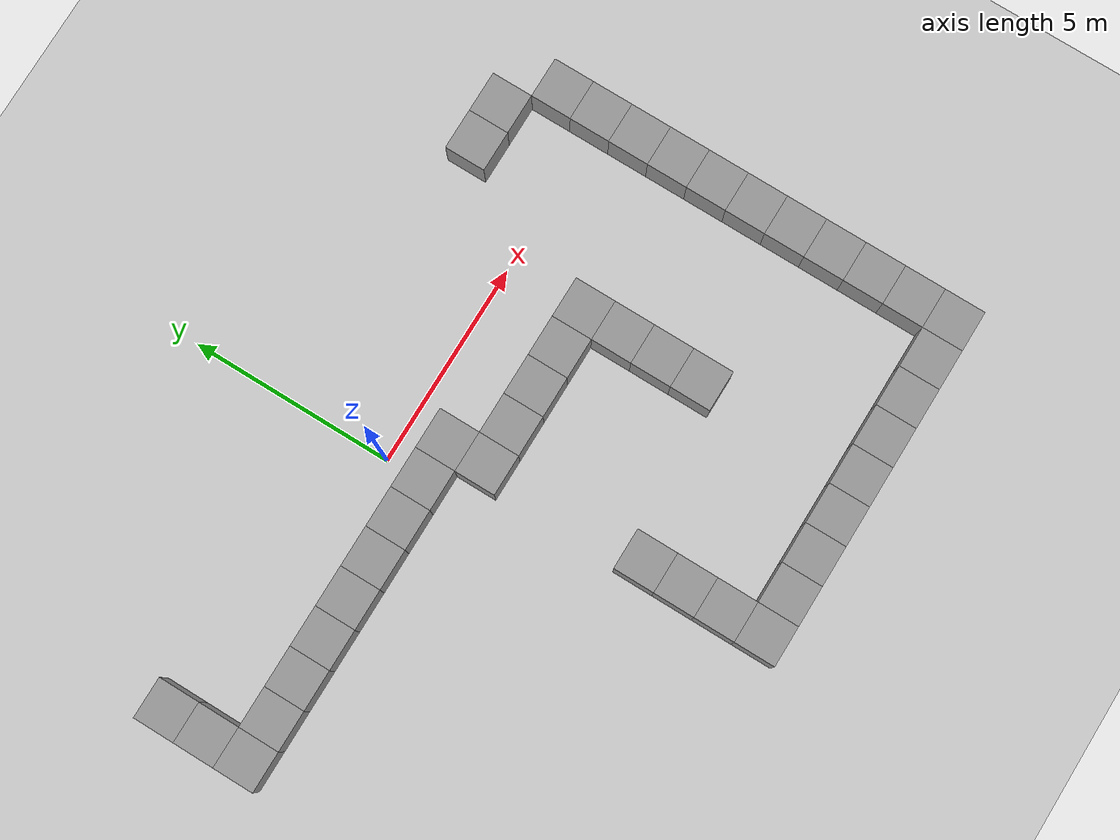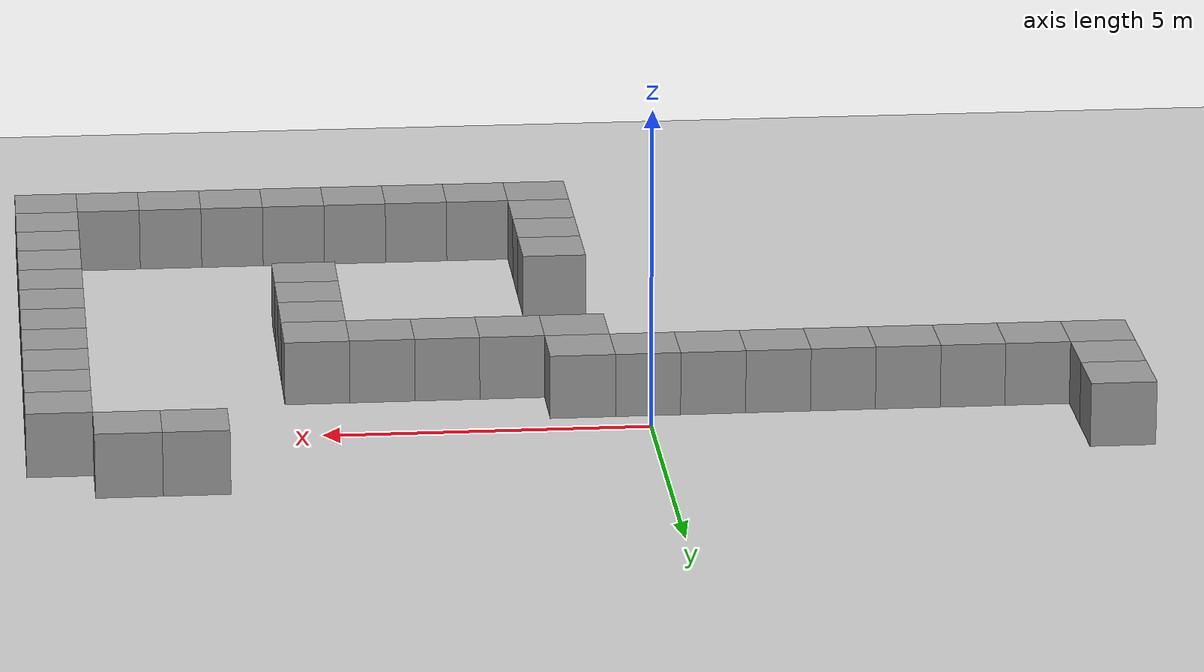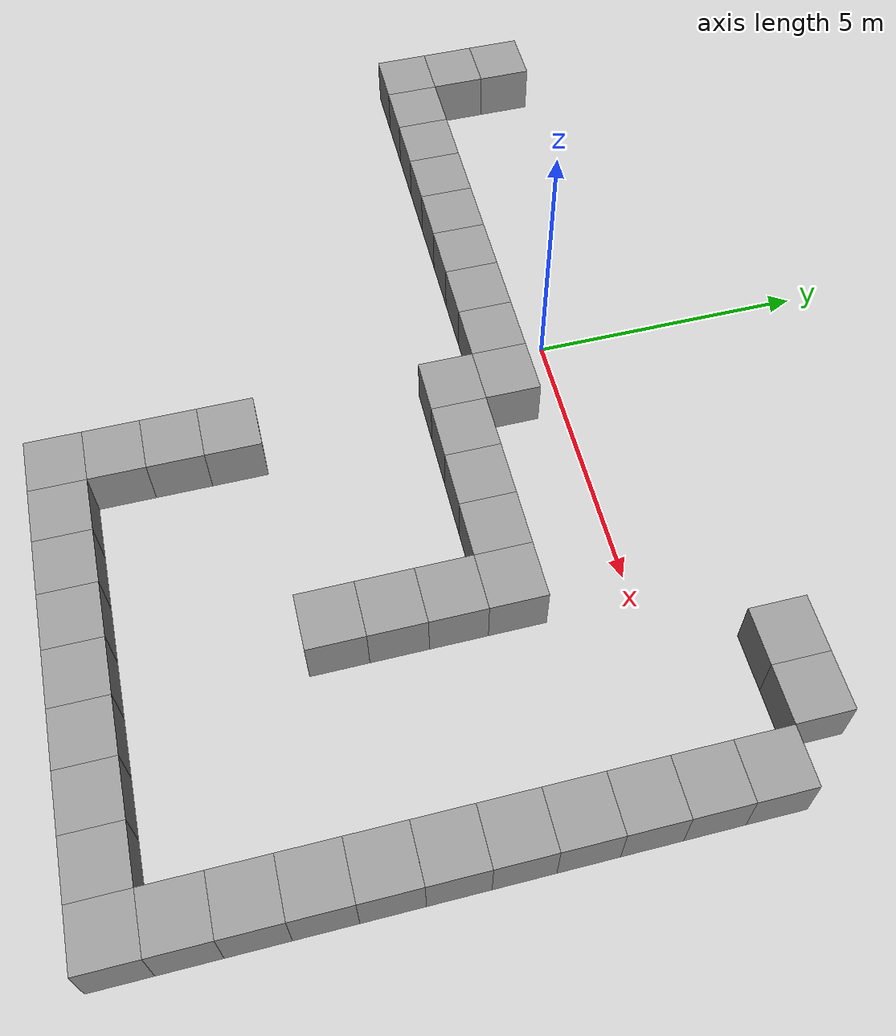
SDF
<sdf version="1.4">
 <world name="default">
  <model name="ground_plane">
   <static>1</static>
   <link name="link">
    <collision name="collision">
     <geometry><plane><normal>0 0 1</normal><size>100 100</size></plane></geometry>
     <surface><friction><ode><mu>100</mu><mu2>50</mu2></ode></friction></surface>
    </collision>
    <visual name="visual">
     <cast_shadows>0</cast_shadows>
     <geometry><plane><normal>0 0 1</normal><size>100 100</size></plane></geometry>
     <material>
      <script><uri>file://media/materials/scripts/gazebo.material</uri><name>Gazebo/Grey</name></script>
     </material>
    </visual>
    <velocity_decay><linear>0</linear><angular>0</angular></velocity_decay>
   </link>
  </model>
  <model name="unit_box_1">
   <pose>1.00001 -0.999994 0.5 -0 -0 -4e-06</pose>
   <link name="link">
    <inertial>
     <mass>1</mass>
     <inertia><ixx>1</ixx><ixy>0</ixy><ixz>0</ixz><iyy>1</iyy><iyz>0</iyz><izz>1</izz></inertia>
    </inertial>
    <collision name="collision"><geometry><box><size>1 1 1</size></box></geometry></collision>
    <visual name="visual">
     <geometry><box><size>1 1 1</size></box></geometry>
     <material>
      <script><uri>file://media/materials/scripts/gazebo.material</uri><name>Gazebo/Grey</name></script>
     </material>
    </visual>
    <velocity_decay><linear>0</linear><angular>0</angular></velocity_decay>
   </link>
   <static>0</static>
  </model>
  <model name="unit_box_3">
   <pose>0.999997 -2 0.5 0 -0 2e-06</pose>
   <link name="link">
    <inertial>
     <mass>1</mass>
     <inertia><ixx>1</ixx><ixy>0</ixy><ixz>0</ixz><iyy>1</iyy><iyz>0</iyz><izz>1</izz></inertia>
    </inertial>
    <collision name="collision"><geometry><box><size>1 1 1</size></box></geometry></collision>
    <visual name="visual">
     <geometry><box><size>1 1 1</size></box></geometry>
     <material>
      <script><uri>file://media/materials/scripts/gazebo.material</uri><name>Gazebo/Grey</name></script>
     </material>
    </visual>
    <velocity_decay><linear>0</linear><angular>0</angular></velocity_decay>
   </link>
   <static>0</static>
  </model>
  <model name="unit_box_4">
   <pose>1.00001 -7 0.5 0 -0 1e-06</pose>
   <link name="link">
    <inertial>
     <mass>1</mass>
     <inertia><ixx>1</ixx><ixy>0</ixy><ixz>0</ixz><iyy>1</iyy><iyz>0</iyz><izz>1</izz></inertia>
    </inertial>
    <collision name="collision"><geometry><box><size>1 1 1</size></box></geometry></collision>
    <visual name="visual">
     <geometry><box><size>1 1 1</size></box></geometry>
     <material>
      <script><uri>file://media/materials/scripts/gazebo.material</uri><name>Gazebo/Grey</name></script>
     </material>
    </visual>
    <velocity_decay><linear>0</linear><angular>0</angular></velocity_decay>
   </link>
   <static>0</static>
  </model>
  <model name="unit_box_5">
   <pose>1 -6 0.5 1e-06 -0 -1e-06</pose>
   <link name="link">
    <inertial>
     <mass>1</mass>
     <inertia><ixx>1</ixx><ixy>0</ixy><ixz>0</ixz><iyy>1</iyy><iyz>0</iyz><izz>1</izz></inertia>
    </inertial>
    <collision name="collision"><geometry><box><size>1 1 1</size></box></geometry></collision>
    <visual name="visual">
     <geometry><box><size>1 1 1</size></box></geometry>
     <material>
      <script><uri>file://media/materials/scripts/gazebo.material</uri><name>Gazebo/Grey</name></script>
     </material>
    </visual>
    <velocity_decay><linear>0</linear><angular>0</angular></velocity_decay>
   </link>
   <static>0</static>
  </model>
  <model name="unit_box_6">
   <pose>1 -8 0.5 0 -0 1e-06</pose>
   <link name="link">
    <inertial>
     <mass>1</mass>
     <inertia><ixx>1</ixx><ixy>0</ixy><ixz>0</ixz><iyy>1</iyy><iyz>0</iyz><izz>1</izz></inertia>
    </inertial>
    <collision name="collision"><geometry><box><size>1 1 1</size></box></geometry></collision>
    <visual name="visual">
     <geometry><box><size>1 1 1</size></box></geometry>
     <material>
      <script><uri>file://media/materials/scripts/gazebo.material</uri><name>Gazebo/Grey</name></script>
     </material>
    </visual>
    <velocity_decay><linear>0</linear><angular>0</angular></velocity_decay>
   </link>
   <static>0</static>
  </model>
  <model name="unit_box_7">
   <pose>0.999993 -9 0.5 0 -0 0</pose>
   <link name="link">
    <inertial>
     <mass>1</mass>
     <inertia><ixx>1</ixx><ixy>0</ixy><ixz>0</ixz><iyy>1</iyy><iyz>0</iyz><izz>1</izz></inertia>
    </inertial>
    <collision name="collision"><geometry><box><size>1 1 1</size></box></geometry></collision>
    <visual name="visual">
     <geometry><box><size>1 1 1</size></box></geometry>
     <material>
      <script><uri>file://media/materials/scripts/gazebo.material</uri><name>Gazebo/Grey</name></script>
     </material>
    </visual>
    <velocity_decay><linear>0</linear><angular>0</angular></velocity_decay>
   </link>
   <static>0</static>
  </model>
  <model name="unit_box_8">
   <pose>2 -9 0.5 0 0 -3e-06</pose>
   <link name="link">
    <inertial>
     <mass>1</mass>
     <inertia><ixx>1</ixx><ixy>0</ixy><ixz>0</ixz><iyy>1</iyy><iyz>0</iyz><izz>1</izz></inertia>
    </inertial>
    <collision name="collision"><geometry><box><size>1 1 1</size></box></geometry></collision>
    <visual name="visual">
     <geometry><box><size>1 1 1</size></box></geometry>
     <material>
      <script><uri>file://media/materials/scripts/gazebo.material</uri><name>Gazebo/Grey</name></script>
     </material>
    </visual>
    <velocity_decay><linear>0</linear><angular>0</angular></velocity_decay>
   </link>
   <static>0</static>
  </model>
  <model name="unit_box_9">
   <pose>3 -9.00001 0.5 0 0 -4e-06</pose>
   <link name="link">
    <inertial>
     <mass>1</mass>
     <inertia><ixx>1</ixx><ixy>0</ixy><ixz>0</ixz><iyy>1</iyy><iyz>0</iyz><izz>1</izz></inertia>
    </inertial>
    <collision name="collision"><geometry><box><size>1 1 1</size></box></geometry></collision>
    <visual name="visual">
     <geometry><box><size>1 1 1</size></box></geometry>
     <material>
      <script><uri>file://media/materials/scripts/gazebo.material</uri><name>Gazebo/Grey</name></script>
     </material>
    </visual>
    <velocity_decay><linear>0</linear><angular>0</angular></velocity_decay>
   </link>
   <static>0</static>
  </model>
  <model name="unit_box_10">
   <pose>4 -9 0.5 0 0 -4e-06</pose>
   <link name="link">
    <inertial>
     <mass>1</mass>
     <inertia><ixx>1</ixx><ixy>0</ixy><ixz>0</ixz><iyy>1</iyy><iyz>0</iyz><izz>1</izz></inertia>
    </inertial>
    <collision name="collision"><geometry><box><size>1 1 1</size></box></geometry></collision>
    <visual name="visual">
     <geometry><box><size>1 1 1</size></box></geometry>
     <material>
      <script><uri>file://media/materials/scripts/gazebo.material</uri><name>Gazebo/Grey</name></script>
     </material>
    </visual>
    <velocity_decay><linear>0</linear><angular>0</angular></velocity_decay>
   </link>
   <static>0</static>
  </model>
  <model name="unit_box_11">
   <pose>5 -9 0.5 0 -0 -4e-06</pose>
   <link name="link">
    <inertial>
     <mass>1</mass>
     <inertia><ixx>1</ixx><ixy>0</ixy><ixz>0</ixz><iyy>1</iyy><iyz>0</iyz><izz>1</izz></inertia>
    </inertial>
    <collision name="collision"><geometry><box><size>1 1 1</size></box></geometry></collision>
    <visual name="visual">
     <geometry><box><size>1 1 1</size></box></geometry>
     <material>
      <script><uri>file://media/materials/scripts/gazebo.material</uri><name>Gazebo/Grey</name></script>
     </material>
    </visual>
    <velocity_decay><linear>0</linear><angular>0</angular></velocity_decay>
   </link>
   <static>0</static>
  </model>
  <model name="unit_box_12">
   <pose>6 -9.00001 0.5 -1e-06 -0 -5e-06</pose>
   <link name="link">
    <inertial>
     <mass>1</mass>
     <inertia><ixx>1</ixx><ixy>0</ixy><ixz>0</ixz><iyy>1</iyy><iyz>0</iyz><izz>1</izz></inertia>
    </inertial>
    <collision name="collision"><geometry><box><size>1 1 1</size></box></geometry></collision>
    <visual name="visual">
     <geometry><box><size>1 1 1</size></box></geometry>
     <material>
      <script><uri>file://media/materials/scripts/gazebo.material</uri><name>Gazebo/Grey</name></script>
     </material>
    </visual>
    <velocity_decay><linear>0</linear><angular>0</angular></velocity_decay>
   </link>
   <static>0</static>
  </model>
  <model name="unit_box_13">
   <pose>7.00001 -9 0.5 0 0 -4e-06</pose>
   <link name="link">
    <inertial>
     <mass>1</mass>
     <inertia><ixx>1</ixx><ixy>0</ixy><ixz>0</ixz><iyy>1</iyy><iyz>0</iyz><izz>1</izz></inertia>
    </inertial>
    <collision name="collision"><geometry><box><size>1 1 1</size></box></geometry></collision>
    <visual name="visual">
     <geometry><box><size>1 1 1</size></box></geometry>
     <material>
      <script><uri>file://media/materials/scripts/gazebo.material</uri><name>Gazebo/Grey</name></script>
     </material>
    </visual>
    <velocity_decay><linear>0</linear><angular>0</angular></velocity_decay>
   </link>
   <static>0</static>
  </model>
  <model name="unit_box_14">
   <pose>8.00001 -9.00001 0.5 -0 -0 -4e-06</pose>
   <link name="link">
    <inertial>
     <mass>1</mass>
     <inertia><ixx>1</ixx><ixy>0</ixy><ixz>0</ixz><iyy>1</iyy><iyz>0</iyz><izz>1</izz></inertia>
    </inertial>
    <collision name="collision"><geometry><box><size>1 1 1</size></box></geometry></collision>
    <visual name="visual">
     <geometry><box><size>1 1 1</size></box></geometry>
     <material>
      <script><uri>file://media/materials/scripts/gazebo.material</uri><name>Gazebo/Grey</name></script>
     </material>
    </visual>
    <velocity_decay><linear>0</linear><angular>0</angular></velocity_decay>
   </link>
   <static>0</static>
  </model>
  <model name="unit_box_15">
   <pose>9.00001 -9.00001 0.5 0 0 -3e-06</pose>
   <link name="link">
    <inertial>
     <mass>1</mass>
     <inertia><ixx>1</ixx><ixy>0</ixy><ixz>0</ixz><iyy>1</iyy><iyz>0</iyz><izz>1</izz></inertia>
    </inertial>
    <collision name="collision"><geometry><box><size>1 1 1</size></box></geometry></collision>
    <visual name="visual">
     <geometry><box><size>1 1 1</size></box></geometry>
     <material>
      <script><uri>file://media/materials/scripts/gazebo.material</uri><name>Gazebo/Grey</name></script>
     </material>
    </visual>
    <velocity_decay><linear>0</linear><angular>0</angular></velocity_decay>
   </link>
   <static>0</static>
  </model>
  <model name="unit_box_16">
   <pose>8.99997 -8.00001 0.5 0 -0 -4e-06</pose>
   <link name="link">
    <inertial>
     <mass>1</mass>
     <inertia><ixx>1</ixx><ixy>0</ixy><ixz>0</ixz><iyy>1</iyy><iyz>0</iyz><izz>1</izz></inertia>
    </inertial>
    <collision name="collision"><geometry><box><size>1 1 1</size></box></geometry></collision>
    <visual name="visual">
     <geometry><box><size>1 1 1</size></box></geometry>
     <material>
      <script><uri>file://media/materials/scripts/gazebo.material</uri><name>Gazebo/Grey</name></script>
     </material>
    </visual>
    <velocity_decay><linear>0</linear><angular>0</angular></velocity_decay>
   </link>
   <static>0</static>
  </model>
  <model name="unit_box_17">
   <pose>8.99999 -7.00001 0.5 0 -0 -4e-06</pose>
   <link name="link">
    <inertial>
     <mass>1</mass>
     <inertia><ixx>1</ixx><ixy>0</ixy><ixz>0</ixz><iyy>1</iyy><iyz>0</iyz><izz>1</izz></inertia>
    </inertial>
    <collision name="collision"><geometry><box><size>1 1 1</size></box></geometry></collision>
    <visual name="visual">
     <geometry><box><size>1 1 1</size></box></geometry>
     <material>
      <script><uri>file://media/materials/scripts/gazebo.material</uri><name>Gazebo/Grey</name></script>
     </material>
    </visual>
    <velocity_decay><linear>0</linear><angular>0</angular></velocity_decay>
   </link>
   <static>0</static>
  </model>
  <model name="unit_box_18">
   <pose>8.99997 -6.00001 0.5 -0 -0 -4e-06</pose>
   <link name="link">
    <inertial>
     <mass>1</mass>
     <inertia><ixx>1</ixx><ixy>0</ixy><ixz>0</ixz><iyy>1</iyy><iyz>0</iyz><izz>1</izz></inertia>
    </inertial>
    <collision name="collision"><geometry><box><size>1 1 1</size></box></geometry></collision>
    <visual name="visual">
     <geometry><box><size>1 1 1</size></box></geometry>
     <material>
      <script><uri>file://media/materials/scripts/gazebo.material</uri><name>Gazebo/Grey</name></script>
     </material>
    </visual>
    <velocity_decay><linear>0</linear><angular>0</angular></velocity_decay>
   </link>
   <static>0</static>
  </model>
  <model name="unit_box_19">
   <pose>9 -5.00001 0.5 0 0 -4e-06</pose>
   <link name="link">
    <inertial>
     <mass>1</mass>
     <inertia><ixx>1</ixx><ixy>0</ixy><ixz>0</ixz><iyy>1</iyy><iyz>0</iyz><izz>1</izz></inertia>
    </inertial>
    <collision name="collision"><geometry><box><size>1 1 1</size></box></geometry></collision>
    <visual name="visual">
     <geometry><box><size>1 1 1</size></box></geometry>
     <material>
      <script><uri>file://media/materials/scripts/gazebo.material</uri><name>Gazebo/Grey</name></script>
     </material>
    </visual>
    <velocity_decay><linear>0</linear><angular>0</angular></velocity_decay>
   </link>
   <static>0</static>
  </model>
  <model name="unit_box_20">
   <pose>9.00001 -4 0.5 0 -0 1e-06</pose>
   <link name="link">
    <inertial>
     <mass>1</mass>
     <inertia><ixx>1</ixx><ixy>0</ixy><ixz>0</ixz><iyy>1</iyy><iyz>0</iyz><izz>1</izz></inertia>
    </inertial>
    <collision name="collision"><geometry><box><size>1 1 1</size></box></geometry></collision>
    <visual name="visual">
     <geometry><box><size>1 1 1</size></box></geometry>
     <material>
      <script><uri>file://media/materials/scripts/gazebo.material</uri><name>Gazebo/Grey</name></script>
     </material>
    </visual>
    <velocity_decay><linear>0</linear><angular>0</angular></velocity_decay>
   </link>
   <static>0</static>
  </model>
  <model name="unit_box_21">
   <pose>9.00002 -3 0.5 0 -0 1e-06</pose>
   <link name="link">
    <inertial>
     <mass>1</mass>
     <inertia><ixx>1</ixx><ixy>0</ixy><ixz>0</ixz><iyy>1</iyy><iyz>0</iyz><izz>1</izz></inertia>
    </inertial>
    <collision name="collision"><geometry><box><size>1 1 1</size></box></geometry></collision>
    <visual name="visual">
     <geometry><box><size>1 1 1</size></box></geometry>
     <material>
      <script><uri>file://media/materials/scripts/gazebo.material</uri><name>Gazebo/Grey</name></script>
     </material>
    </visual>
    <velocity_decay><linear>0</linear><angular>0</angular></velocity_decay>
   </link>
   <static>0</static>
  </model>
  <model name="unit_box_22">
   <pose>9.00001 -2 0.5 -0 -0 -1e-06</pose>
   <link name="link">
    <inertial>
     <mass>1</mass>
     <inertia><ixx>1</ixx><ixy>0</ixy><ixz>0</ixz><iyy>1</iyy><iyz>0</iyz><izz>1</izz></inertia>
    </inertial>
    <collision name="collision"><geometry><box><size>1 1 1</size></box></geometry></collision>
    <visual name="visual">
     <geometry><box><size>1 1 1</size></box></geometry>
     <material>
      <script><uri>file://media/materials/scripts/gazebo.material</uri><name>Gazebo/Grey</name></script>
     </material>
    </visual>
    <velocity_decay><linear>0</linear><angular>0</angular></velocity_decay>
   </link>
   <static>0</static>
  </model>
  <model name="unit_box_23">
   <pose>9.00002 -1 0.5 0 -0 -2e-06</pose>
   <link name="link">
    <inertial>
     <mass>1</mass>
     <inertia><ixx>1</ixx><ixy>0</ixy><ixz>0</ixz><iyy>1</iyy><iyz>0</iyz><izz>1</izz></inertia>
    </inertial>
    <collision name="collision"><geometry><box><size>1 1 1</size></box></geometry></collision>
    <visual name="visual">
     <geometry><box><size>1 1 1</size></box></geometry>
     <material>
      <script><uri>file://media/materials/scripts/gazebo.material</uri><name>Gazebo/Grey</name></script>
     </material>
    </visual>
    <velocity_decay><linear>0</linear><angular>0</angular></velocity_decay>
   </link>
   <static>0</static>
  </model>
  <model name="unit_box_24">
   <pose>9.00001 1e-06 0.5 0 -0 -2e-06</pose>
   <link name="link">
    <inertial>
     <mass>1</mass>
     <inertia><ixx>1</ixx><ixy>0</ixy><ixz>0</ixz><iyy>1</iyy><iyz>0</iyz><izz>1</izz></inertia>
    </inertial>
    <collision name="collision"><geometry><box><size>1 1 1</size></box></geometry></collision>
    <visual name="visual">
     <geometry><box><size>1 1 1</size></box></geometry>
     <material>
      <script><uri>file://media/materials/scripts/gazebo.material</uri><name>Gazebo/Grey</name></script>
     </material>
    </visual>
    <velocity_decay><linear>0</linear><angular>0</angular></velocity_decay>
   </link>
   <static>0</static>
  </model>
  <model name="unit_box_25">
   <pose>9 1.00001 0.5 0 0 -6e-06</pose>
   <link name="link">
    <inertial>
     <mass>1</mass>
     <inertia><ixx>1</ixx><ixy>0</ixy><ixz>0</ixz><iyy>1</iyy><iyz>0</iyz><izz>1</izz></inertia>
    </inertial>
    <collision name="collision"><geometry><box><size>1 1 1</size></box></geometry></collision>
    <visual name="visual">
     <geometry><box><size>1 1 1</size></box></geometry>
     <material>
      <script><uri>file://media/materials/scripts/gazebo.material</uri><name>Gazebo/Grey</name></script>
     </material>
    </visual>
    <velocity_decay><linear>0</linear><angular>0</angular></velocity_decay>
   </link>
   <static>0</static>
  </model>
  <model name="unit_box_57">
   <pose>-6.99998 0.999999 0.5 -0 -0 -9e-06</pose>
   <link name="link">
    <inertial>
     <mass>1</mass>
     <inertia><ixx>1</ixx><ixy>0</ixy><ixz>0</ixz><iyy>1</iyy><iyz>0</iyz><izz>1</izz></inertia>
    </inertial>
    <collision name="collision"><geometry><box><size>1 1 1</size></box></geometry></collision>
    <visual name="visual">
     <geometry><box><size>1 1 1</size></box></geometry>
     <material>
      <script><uri>file://media/materials/scripts/gazebo.material</uri><name>Gazebo/Grey</name></script>
     </material>
    </visual>
    <velocity_decay><linear>0</linear><angular>0</angular></velocity_decay>
   </link>
   <static>0</static>
  </model>
  <model name="unit_box_58">
   <pose>-7 -4e-06 0.5 0 -0 -1.1e-05</pose>
   <link name="link">
    <inertial>
     <mass>1</mass>
     <inertia><ixx>1</ixx><ixy>0</ixy><ixz>0</ixz><iyy>1</iyy><iyz>0</iyz><izz>1</izz></inertia>
    </inertial>
    <collision name="collision"><geometry><box><size>1 1 1</size></box></geometry></collision>
    <visual name="visual">
     <geometry><box><size>1 1 1</size></box></geometry>
     <material>
      <script><uri>file://media/materials/scripts/gazebo.material</uri><name>Gazebo/Grey</name></script>
     </material>
    </visual>
    <velocity_decay><linear>0</linear><angular>0</angular></velocity_decay>
   </link>
   <static>0</static>
  </model>
  <model name="unit_box_59">
   <pose>-7 -1.00001 0.5 0 -0 -6e-06</pose>
   <link name="link">
    <inertial>
     <mass>1</mass>
     <inertia><ixx>1</ixx><ixy>0</ixy><ixz>0</ixz><iyy>1</iyy><iyz>0</iyz><izz>1</izz></inertia>
    </inertial>
    <collision name="collision"><geometry><box><size>1 1 1</size></box></geometry></collision>
    <visual name="visual">
     <geometry><box><size>1 1 1</size></box></geometry>
     <material>
      <script><uri>file://media/materials/scripts/gazebo.material</uri><name>Gazebo/Grey</name></script>
     </material>
    </visual>
    <velocity_decay><linear>0</linear><angular>0</angular></velocity_decay>
   </link>
   <static>0</static>
  </model>
  <model name="unit_box_60">
   <pose>-6 -0.999979 0.5 0 0 -6e-06</pose>
   <link name="link">
    <inertial>
     <mass>1</mass>
     <inertia><ixx>1</ixx><ixy>0</ixy><ixz>0</ixz><iyy>1</iyy><iyz>0</iyz><izz>1</izz></inertia>
    </inertial>
    <collision name="collision"><geometry><box><size>1 1 1</size></box></geometry></collision>
    <visual name="visual">
     <geometry><box><size>1 1 1</size></box></geometry>
     <material>
      <script><uri>file://media/materials/scripts/gazebo.material</uri><name>Gazebo/Grey</name></script>
     </material>
    </visual>
    <velocity_decay><linear>0</linear><angular>0</angular></velocity_decay>
   </link>
   <static>0</static>
  </model>
  <model name="unit_box_61">
   <pose>-5 -0.999987 0.5 -0 -0 -6e-06</pose>
   <link name="link">
    <inertial>
     <mass>1</mass>
     <inertia><ixx>1</ixx><ixy>0</ixy><ixz>0</ixz><iyy>1</iyy><iyz>0</iyz><izz>1</izz></inertia>
    </inertial>
    <collision name="collision"><geometry><box><size>1 1 1</size></box></geometry></collision>
    <visual name="visual">
     <geometry><box><size>1 1 1</size></box></geometry>
     <material>
      <script><uri>file://media/materials/scripts/gazebo.material</uri><name>Gazebo/Grey</name></script>
     </material>
    </visual>
    <velocity_decay><linear>0</linear><angular>0</angular></velocity_decay>
   </link>
   <static>0</static>
  </model>
  <model name="unit_box_62">
   <pose>-4 -0.999992 0.5 0 -0 -5e-06</pose>
   <link name="link">
    <inertial>
     <mass>1</mass>
     <inertia><ixx>1</ixx><ixy>0</ixy><ixz>0</ixz><iyy>1</iyy><iyz>0</iyz><izz>1</izz></inertia>
    </inertial>
    <collision name="collision"><geometry><box><size>1 1 1</size></box></geometry></collision>
    <visual name="visual">
     <geometry><box><size>1 1 1</size></box></geometry>
     <material>
      <script><uri>file://media/materials/scripts/gazebo.material</uri><name>Gazebo/Grey</name></script>
     </material>
    </visual>
    <velocity_decay><linear>0</linear><angular>0</angular></velocity_decay>
   </link>
   <static>0</static>
  </model>
  <model name="unit_box_63">
   <pose>-3 -0.99998 0.5 0 0 -5e-06</pose>
   <link name="link">
    <inertial>
     <mass>1</mass>
     <inertia><ixx>1</ixx><ixy>0</ixy><ixz>0</ixz><iyy>1</iyy><iyz>0</iyz><izz>1</izz></inertia>
    </inertial>
    <collision name="collision"><geometry><box><size>1 1 1</size></box></geometry></collision>
    <visual name="visual">
     <geometry><box><size>1 1 1</size></box></geometry>
     <material>
      <script><uri>file://media/materials/scripts/gazebo.material</uri><name>Gazebo/Grey</name></script>
     </material>
    </visual>
    <velocity_decay><linear>0</linear><angular>0</angular></velocity_decay>
   </link>
   <static>0</static>
  </model>
  <model name="unit_box_64">
   <pose>-1.99999 -0.999988 0.5 0 0 -5e-06</pose>
   <link name="link">
    <inertial>
     <mass>1</mass>
     <inertia><ixx>1</ixx><ixy>0</ixy><ixz>0</ixz><iyy>1</iyy><iyz>0</iyz><izz>1</izz></inertia>
    </inertial>
    <collision name="collision"><geometry><box><size>1 1 1</size></box></geometry></collision>
    <visual name="visual">
     <geometry><box><size>1 1 1</size></box></geometry>
     <material>
      <script><uri>file://media/materials/scripts/gazebo.material</uri><name>Gazebo/Grey</name></script>
     </material>
    </visual>
    <velocity_decay><linear>0</linear><angular>0</angular></velocity_decay>
   </link>
   <static>0</static>
  </model>
  <model name="unit_box_65">
   <pose>-0.999995 -0.999993 0.5 -0 -0 -5e-06</pose>
   <link name="link">
    <inertial>
     <mass>1</mass>
     <inertia><ixx>1</ixx><ixy>0</ixy><ixz>0</ixz><iyy>1</iyy><iyz>0</iyz><izz>1</izz></inertia>
    </inertial>
    <collision name="collision"><geometry><box><size>1 1 1</size></box></geometry></collision>
    <visual name="visual">
     <geometry><box><size>1 1 1</size></box></geometry>
     <material>
      <script><uri>file://media/materials/scripts/gazebo.material</uri><name>Gazebo/Grey</name></script>
     </material>
    </visual>
    <velocity_decay><linear>0</linear><angular>0</angular></velocity_decay>
   </link>
   <static>0</static>
  </model>
  <model name="unit_box_66">
   <pose>6e-06 -0.999998 0.5 -0 -0 -6e-06</pose>
   <link name="link">
    <inertial>
     <mass>1</mass>
     <inertia><ixx>1</ixx><ixy>0</ixy><ixz>0</ixz><iyy>1</iyy><iyz>0</iyz><izz>1</izz></inertia>
    </inertial>
    <collision name="collision"><geometry><box><size>1 1 1</size></box></geometry></collision>
    <visual name="visual">
     <geometry><box><size>1 1 1</size></box></geometry>
     <material>
      <script><uri>file://media/materials/scripts/gazebo.material</uri><name>Gazebo/Grey</name></script>
     </material>
    </visual>
    <velocity_decay><linear>0</linear><angular>0</angular></velocity_decay>
   </link>
   <static>0</static>
  </model>
  <model name="unit_box_67">
   <pose>2 -2 0.5 0 -0 3e-06</pose>
   <link name="link">
    <inertial>
     <mass>1</mass>
     <inertia><ixx>1</ixx><ixy>0</ixy><ixz>0</ixz><iyy>1</iyy><iyz>0</iyz><izz>1</izz></inertia>
    </inertial>
    <collision name="collision"><geometry><box><size>1 1 1</size></box></geometry></collision>
    <visual name="visual">
     <geometry><box><size>1 1 1</size></box></geometry>
     <material>
      <script><uri>file://media/materials/scripts/gazebo.material</uri><name>Gazebo/Grey</name></script>
     </material>
    </visual>
    <velocity_decay><linear>0</linear><angular>0</angular></velocity_decay>
   </link>
   <static>0</static>
  </model>
  <model name="unit_box_68">
   <pose>3 -2 0.5 0 -0 3e-06</pose>
   <link name="link">
    <inertial>
     <mass>1</mass>
     <inertia><ixx>1</ixx><ixy>0</ixy><ixz>0</ixz><iyy>1</iyy><iyz>0</iyz><izz>1</izz></inertia>
    </inertial>
    <collision name="collision"><geometry><box><size>1 1 1</size></box></geometry></collision>
    <visual name="visual">
     <geometry><box><size>1 1 1</size></box></geometry>
     <material>
      <script><uri>file://media/materials/scripts/gazebo.material</uri><name>Gazebo/Grey</name></script>
     </material>
    </visual>
    <velocity_decay><linear>0</linear><angular>0</angular></velocity_decay>
   </link>
   <static>0</static>
  </model>
  <model name="unit_box_69">
   <pose>4 -2 0.5 0 -0 3e-06</pose>
   <link name="link">
    <inertial>
     <mass>1</mass>
     <inertia><ixx>1</ixx><ixy>0</ixy><ixz>0</ixz><iyy>1</iyy><iyz>0</iyz><izz>1</izz></inertia>
    </inertial>
    <collision name="collision"><geometry><box><size>1 1 1</size></box></geometry></collision>
    <visual name="visual">
     <geometry><box><size>1 1 1</size></box></geometry>
     <material>
      <script><uri>file://media/materials/scripts/gazebo.material</uri><name>Gazebo/Grey</name></script>
     </material>
    </visual>
    <velocity_decay><linear>0</linear><angular>0</angular></velocity_decay>
   </link>
   <static>0</static>
  </model>
  <model name="unit_box_70">
   <pose>5.00001 -1.99999 0.5 -0 -0 -1e-06</pose>
   <link name="link">
    <inertial>
     <mass>1</mass>
     <inertia><ixx>1</ixx><ixy>0</ixy><ixz>0</ixz><iyy>1</iyy><iyz>0</iyz><izz>1</izz></inertia>
    </inertial>
    <collision name="collision"><geometry><box><size>1 1 1</size></box></geometry></collision>
    <visual name="visual">
     <geometry><box><size>1 1 1</size></box></geometry>
     <material>
      <script><uri>file://media/materials/scripts/gazebo.material</uri><name>Gazebo/Grey</name></script>
     </material>
    </visual>
    <velocity_decay><linear>0</linear><angular>0</angular></velocity_decay>
   </link>
   <static>0</static>
  </model>
  <model name="unit_box_72">
   <pose>5 -3 0.5 0 -0 6e-06</pose>
   <link name="link">
    <inertial>
     <mass>1</mass>
     <inertia><ixx>1</ixx><ixy>0</ixy><ixz>0</ixz><iyy>1</iyy><iyz>0</iyz><izz>1</izz></inertia>
    </inertial>
    <collision name="collision"><geometry><box><size>1 1 1</size></box></geometry></collision>
    <visual name="visual">
     <geometry><box><size>1 1 1</size></box></geometry>
     <material>
      <script><uri>file://media/materials/scripts/gazebo.material</uri><name>Gazebo/Grey</name></script>
     </material>
    </visual>
    <velocity_decay><linear>0</linear><angular>0</angular></velocity_decay>
   </link>
   <static>0</static>
  </model>
  <model name="unit_box_73">
   <pose>5 -4 0.5 0 -0 6e-06</pose>
   <link name="link">
    <inertial>
     <mass>1</mass>
     <inertia><ixx>1</ixx><ixy>0</ixy><ixz>0</ixz><iyy>1</iyy><iyz>0</iyz><izz>1</izz></inertia>
    </inertial>
    <collision name="collision"><geometry><box><size>1 1 1</size></box></geometry></collision>
    <visual name="visual">
     <geometry><box><size>1 1 1</size></box></geometry>
     <material>
      <script><uri>file://media/materials/scripts/gazebo.material</uri><name>Gazebo/Grey</name></script>
     </material>
    </visual>
    <velocity_decay><linear>0</linear><angular>0</angular></velocity_decay>
   </link>
   <static>0</static>
  </model>
  <model name="unit_box_74">
   <pose>5 -5 0.5 0 -0 5e-06</pose>
   <link name="link">
    <inertial>
     <mass>1</mass>
     <inertia><ixx>1</ixx><ixy>0</ixy><ixz>0</ixz><iyy>1</iyy><iyz>0</iyz><izz>1</izz></inertia>
    </inertial>
    <collision name="collision"><geometry><box><size>1 1 1</size></box></geometry></collision>
    <visual name="visual">
     <geometry><box><size>1 1 1</size></box></geometry>
     <material>
      <script><uri>file://media/materials/scripts/gazebo.material</uri><name>Gazebo/Grey</name></script>
     </material>
    </visual>
    <velocity_decay><linear>0</linear><angular>0</angular></velocity_decay>
   </link>
   <static>0</static>
  </model>
  <model name="unit_box_75">
   <pose>8 1.99999 0.5 -0 -0 -1e-06</pose>
   <link name="link">
    <inertial>
     <mass>1</mass>
     <inertia><ixx>1</ixx><ixy>0</ixy><ixz>0</ixz><iyy>1</iyy><iyz>0</iyz><izz>1</izz></inertia>
    </inertial>
    <collision name="collision"><geometry><box><size>1 1 1</size></box></geometry></collision>
    <visual name="visual">
     <geometry><box><size>1 1 1</size></box></geometry>
     <material>
      <script><uri>file://media/materials/scripts/gazebo.material</uri><name>Gazebo/Grey</name></script>
     </material>
    </visual>
    <velocity_decay><linear>0</linear><angular>0</angular></velocity_decay>
   </link>
   <static>0</static>
  </model>
  <model name="unit_box_76">
   <pose>7 1.99998 0.5 0 0 -1e-06</pose>
   <link name="link">
    <inertial>
     <mass>1</mass>
     <inertia><ixx>1</ixx><ixy>0</ixy><ixz>0</ixz><iyy>1</iyy><iyz>0</iyz><izz>1</izz></inertia>
    </inertial>
    <collision name="collision"><geometry><box><size>1 1 1</size></box></geometry></collision>
    <visual name="visual">
     <geometry><box><size>1 1 1</size></box></geometry>
     <material>
      <script><uri>file://media/materials/scripts/gazebo.material</uri><name>Gazebo/Grey</name></script>
     </material>
    </visual>
    <velocity_decay><linear>0</linear><angular>0</angular></velocity_decay>
   </link>
   <static>0</static>
  </model>
 </world>
</sdf>
